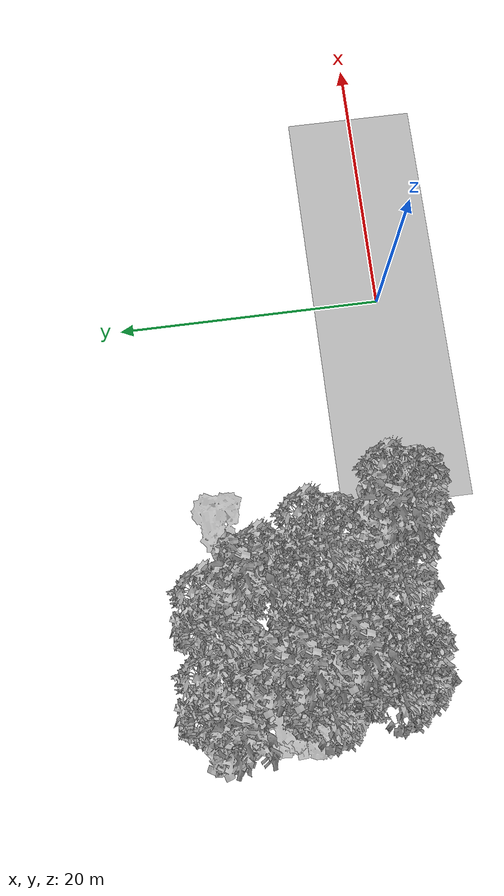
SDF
<sdf version="1.7">
 <world name="default">
  <model name="ground_plane">
   <static>1</static>
   <link name="link">
    <collision name="collision">
     <pose>-50 0 0 0 -0 0</pose>
     <geometry><plane><normal>0 0 1</normal><size>100 100</size></plane></geometry>
     <surface><contact><ode><min_depth>0.01</min_depth><max_vel>0</max_vel></ode></contact></surface>
    </collision>
    <visual name="grass">
     <cast_shadows>0</cast_shadows>
     <geometry>
      <mesh>
       <scale>0.5814285714285714 0.18142857142857144 0.1</scale>
       <uri>file://grass_plane/meshes/grass_plane.dae</uri>
      </mesh>
     </geometry>
    </visual>
   </link>
  </model>
  <model name="Tree 18">
   <static>1</static>
   <pose>-30.111929667590598 10.298646541853945 0 1.57079 -0 0</pose>
   <link name="link">
    <collision name="collision">
     <geometry><mesh><scale>3 2 3</scale><uri>model://tree_3/meshes/tree_3.obj</uri></mesh></geometry>
    </collision>
    <visual name="visual">
     <geometry><mesh><scale>3 2 3</scale><uri>model://tree_3/meshes/tree_3.obj</uri></mesh></geometry>
    </visual>
   </link>
  </model>
  <model name="Tree 45">
   <static>1</static>
   <pose>-17.58954131761009 3.535552865321147 0 1.57079 -0 0</pose>
   <link name="link">
    <collision name="collision">
     <geometry><mesh><scale>3.5 5 3.5</scale><uri>model://tree_9/meshes/tree_9.obj</uri></mesh></geometry>
    </collision>
    <visual name="visual">
     <geometry><mesh><scale>3.5 5 3.5</scale><uri>model://tree_9/meshes/tree_9.obj</uri></mesh></geometry>
    </visual>
   </link>
  </model>
  <model name="Tree 47">
   <static>1</static>
   <pose>-26.433230584407806 11.398256091670373 0 1.57079 -0 0</pose>
   <link name="link">
    <collision name="collision">
     <geometry><mesh><scale>3.5 5 3.5</scale><uri>model://tree_9/meshes/tree_9.obj</uri></mesh></geometry>
    </collision>
    <visual name="visual">
     <geometry><mesh><scale>3.5 5 3.5</scale><uri>model://tree_9/meshes/tree_9.obj</uri></mesh></geometry>
    </visual>
   </link>
  </model>
  <model name="Tree 59">
   <static>1</static>
   <pose>-26.517983421635055 2.756951550227882 0 1.57079 -0 0</pose>
   <link name="link">
    <collision name="collision">
     <geometry><mesh><scale>3.5 5 3.5</scale><uri>model://tree_2/meshes/tree_2.obj</uri></mesh></geometry>
    </collision>
    <visual name="visual">
     <geometry><mesh><scale>3.5 5 3.5</scale><uri>model://tree_2/meshes/tree_2.obj</uri></mesh></geometry>
    </visual>
   </link>
  </model>
  <model name="Tree 65">
   <static>1</static>
   <pose>-29.569099491698502 14.035850226527426 0 1.57079 -0 0</pose>
   <link name="link">
    <collision name="collision">
     <geometry><mesh><scale>3.5 5 3.5</scale><uri>model://tree_9/meshes/tree_9.obj</uri></mesh></geometry>
    </collision>
    <visual name="visual">
     <geometry><mesh><scale>3.5 5 3.5</scale><uri>model://tree_9/meshes/tree_9.obj</uri></mesh></geometry>
    </visual>
   </link>
  </model>
  <model name="Tree 66">
   <static>1</static>
   <pose>-24.936312415298275 9.479751244326476 0 1.57079 -0 0</pose>
   <link name="link">
    <collision name="collision">
     <geometry><mesh><scale>3 2 3</scale><uri>model://tree_3/meshes/tree_3.obj</uri></mesh></geometry>
    </collision>
    <visual name="visual">
     <geometry><mesh><scale>3 2 3</scale><uri>model://tree_3/meshes/tree_3.obj</uri></mesh></geometry>
    </visual>
   </link>
  </model>
  <model name="Tree 79">
   <static>1</static>
   <pose>-15.513808391097179 13.872051602895517 0 1.57079 -0 0</pose>
   <link name="link">
    <collision name="collision">
     <geometry><mesh><scale>3 2 3</scale><uri>model://tree_3/meshes/tree_3.obj</uri></mesh></geometry>
    </collision>
    <visual name="visual">
     <geometry><mesh><scale>3 2 3</scale><uri>model://tree_3/meshes/tree_3.obj</uri></mesh></geometry>
    </visual>
   </link>
  </model>
  <model name="Tree 96">
   <static>1</static>
   <pose>-25.300489403460038 5.2217594686056685 0 1.57079 -0 0</pose>
   <link name="link">
    <collision name="collision">
     <geometry><mesh><scale>3.5 5 3.5</scale><uri>model://tree_2/meshes/tree_2.obj</uri></mesh></geometry>
    </collision>
    <visual name="visual">
     <geometry><mesh><scale>3.5 5 3.5</scale><uri>model://tree_2/meshes/tree_2.obj</uri></mesh></geometry>
    </visual>
   </link>
  </model>
  <model name="Tree 105">
   <static>1</static>
   <pose>-20.36405833393593 13.019673782064253 0 1.57079 -0 0</pose>
   <link name="link">
    <collision name="collision">
     <geometry><mesh><scale>3.5 5 3.5</scale><uri>model://tree_9/meshes/tree_9.obj</uri></mesh></geometry>
    </collision>
    <visual name="visual">
     <geometry><mesh><scale>3.5 5 3.5</scale><uri>model://tree_9/meshes/tree_9.obj</uri></mesh></geometry>
    </visual>
   </link>
  </model>
  <model name="Tree 109">
   <static>1</static>
   <pose>-20.14058038980873 10.734048532202578 0 1.57079 -0 0</pose>
   <link name="link">
    <collision name="collision">
     <geometry><mesh><scale>3.5 5 3.5</scale><uri>model://tree_2/meshes/tree_2.obj</uri></mesh></geometry>
    </collision>
    <visual name="visual">
     <geometry><mesh><scale>3.5 5 3.5</scale><uri>model://tree_2/meshes/tree_2.obj</uri></mesh></geometry>
    </visual>
   </link>
  </model>
  <model name="Tree 125">
   <static>1</static>
   <pose>-19.33445344325752 11.188742687928851 0 1.57079 -0 0</pose>
   <link name="link">
    <collision name="collision">
     <geometry><mesh><scale>3 2 3</scale><uri>model://tree_3/meshes/tree_3.obj</uri></mesh></geometry>
    </collision>
    <visual name="visual">
     <geometry><mesh><scale>3 2 3</scale><uri>model://tree_3/meshes/tree_3.obj</uri></mesh></geometry>
    </visual>
   </link>
  </model>
  <model name="Tree 136">
   <static>1</static>
   <pose>-22.388114156257945 14.649075877006652 0 1.57079 -0 0</pose>
   <link name="link">
    <collision name="collision">
     <geometry><mesh><scale>3.5 5 3.5</scale><uri>model://tree_2/meshes/tree_2.obj</uri></mesh></geometry>
    </collision>
    <visual name="visual">
     <geometry><mesh><scale>3.5 5 3.5</scale><uri>model://tree_2/meshes/tree_2.obj</uri></mesh></geometry>
    </visual>
   </link>
  </model>
  <model name="Tree 144">
   <static>1</static>
   <pose>-18.16381189765353 7.275156035675902 0 1.57079 -0 0</pose>
   <link name="link">
    <collision name="collision">
     <geometry><mesh><scale>3.5 5 3.5</scale><uri>model://tree_2/meshes/tree_2.obj</uri></mesh></geometry>
    </collision>
    <visual name="visual">
     <geometry><mesh><scale>3.5 5 3.5</scale><uri>model://tree_2/meshes/tree_2.obj</uri></mesh></geometry>
    </visual>
   </link>
  </model>
  <model name="Tree 156">
   <static>1</static>
   <pose>-20.612496759961186 2.900106244919062 0 1.57079 -0 0</pose>
   <link name="link">
    <collision name="collision">
     <geometry><mesh><scale>3.5 5 3.5</scale><uri>model://tree_2/meshes/tree_2.obj</uri></mesh></geometry>
    </collision>
    <visual name="visual">
     <geometry><mesh><scale>3.5 5 3.5</scale><uri>model://tree_2/meshes/tree_2.obj</uri></mesh></geometry>
    </visual>
   </link>
  </model>
  <model name="Tree 163">
   <static>1</static>
   <pose>-31.053246090860817 9.14121072037133 0 1.57079 -0 0</pose>
   <link name="link">
    <collision name="collision">
     <geometry><mesh><scale>4 2.5 4</scale><uri>model://tree_1/meshes/tree_1.obj</uri></mesh></geometry>
    </collision>
    <visual name="visual">
     <geometry><mesh><scale>4 2.5 4</scale><uri>model://tree_1/meshes/tree_1.obj</uri></mesh></geometry>
    </visual>
   </link>
  </model>
  <model name="Tree 179">
   <static>1</static>
   <pose>-20.802112200071097 2.7700875756495833 0 1.57079 -0 0</pose>
   <link name="link">
    <collision name="collision">
     <geometry><mesh><scale>3 2 3</scale><uri>model://tree_3/meshes/tree_3.obj</uri></mesh></geometry>
    </collision>
    <visual name="visual">
     <geometry><mesh><scale>3 2 3</scale><uri>model://tree_3/meshes/tree_3.obj</uri></mesh></geometry>
    </visual>
   </link>
  </model>
  <model name="Tree 188">
   <static>1</static>
   <pose>-27.93700117385421 8.414360485496886 0 1.57079 -0 0</pose>
   <link name="link">
    <collision name="collision">
     <geometry><mesh><scale>3.5 5 3.5</scale><uri>model://tree_2/meshes/tree_2.obj</uri></mesh></geometry>
    </collision>
    <visual name="visual">
     <geometry><mesh><scale>3.5 5 3.5</scale><uri>model://tree_2/meshes/tree_2.obj</uri></mesh></geometry>
    </visual>
   </link>
  </model>
  <model name="Tree 221">
   <static>1</static>
   <pose>-27.720371770053585 14.889885282080346 0 1.57079 -0 0</pose>
   <link name="link">
    <collision name="collision">
     <geometry><mesh><scale>3.5 5 3.5</scale><uri>model://tree_2/meshes/tree_2.obj</uri></mesh></geometry>
    </collision>
    <visual name="visual">
     <geometry><mesh><scale>3.5 5 3.5</scale><uri>model://tree_2/meshes/tree_2.obj</uri></mesh></geometry>
    </visual>
   </link>
  </model>
  <model name="Tree 245">
   <static>1</static>
   <pose>-27.38697243514702 3.99806677075933 0 1.57079 -0 0</pose>
   <link name="link">
    <collision name="collision">
     <geometry><mesh><scale>3.5 5 3.5</scale><uri>model://tree_2/meshes/tree_2.obj</uri></mesh></geometry>
    </collision>
    <visual name="visual">
     <geometry><mesh><scale>3.5 5 3.5</scale><uri>model://tree_2/meshes/tree_2.obj</uri></mesh></geometry>
    </visual>
   </link>
  </model>
  <model name="Tree 246">
   <static>1</static>
   <pose>-25.717720429612754 6.282036644705531 0 1.57079 -0 0</pose>
   <link name="link">
    <collision name="collision">
     <geometry><mesh><scale>3.5 5 3.5</scale><uri>model://tree_9/meshes/tree_9.obj</uri></mesh></geometry>
    </collision>
    <visual name="visual">
     <geometry><mesh><scale>3.5 5 3.5</scale><uri>model://tree_9/meshes/tree_9.obj</uri></mesh></geometry>
    </visual>
   </link>
  </model>
  <model name="Tree 247">
   <static>1</static>
   <pose>-26.37612036665093 9.555469775447083 0 1.57079 -0 0</pose>
   <link name="link">
    <collision name="collision">
     <geometry><mesh><scale>3.5 5 3.5</scale><uri>model://tree_9/meshes/tree_9.obj</uri></mesh></geometry>
    </collision>
    <visual name="visual">
     <geometry><mesh><scale>3.5 5 3.5</scale><uri>model://tree_9/meshes/tree_9.obj</uri></mesh></geometry>
    </visual>
   </link>
  </model>
  <model name="Tree 248">
   <static>1</static>
   <pose>-15.724315317818757 1.382475547084283 0 1.57079 -0 0</pose>
   <link name="link">
    <collision name="collision">
     <geometry><mesh><scale>3.5 5 3.5</scale><uri>model://tree_2/meshes/tree_2.obj</uri></mesh></geometry>
    </collision>
    <visual name="visual">
     <geometry><mesh><scale>3.5 5 3.5</scale><uri>model://tree_2/meshes/tree_2.obj</uri></mesh></geometry>
    </visual>
   </link>
  </model>
  <model name="Tree 267">
   <static>1</static>
   <pose>-20.98486800585116 7.855043824439861 0 1.57079 -0 0</pose>
   <link name="link">
    <collision name="collision">
     <geometry><mesh><scale>4 2.5 4</scale><uri>model://tree_1/meshes/tree_1.obj</uri></mesh></geometry>
    </collision>
    <visual name="visual">
     <geometry><mesh><scale>4 2.5 4</scale><uri>model://tree_1/meshes/tree_1.obj</uri></mesh></geometry>
    </visual>
   </link>
  </model>
  <model name="Tree 288">
   <static>1</static>
   <pose>-22.755612669346547 8.442458356509263 0 1.57079 -0 0</pose>
   <link name="link">
    <collision name="collision">
     <geometry><mesh><scale>3.5 5 3.5</scale><uri>model://tree_2/meshes/tree_2.obj</uri></mesh></geometry>
    </collision>
    <visual name="visual">
     <geometry><mesh><scale>3.5 5 3.5</scale><uri>model://tree_2/meshes/tree_2.obj</uri></mesh></geometry>
    </visual>
   </link>
  </model>
  <model name="Tree 298">
   <static>1</static>
   <pose>-21.632968404005336 14.488051885137068 0 1.57079 -0 0</pose>
   <link name="link">
    <collision name="collision">
     <geometry><mesh><scale>4 2.5 4</scale><uri>model://tree_1/meshes/tree_1.obj</uri></mesh></geometry>
    </collision>
    <visual name="visual">
     <geometry><mesh><scale>4 2.5 4</scale><uri>model://tree_1/meshes/tree_1.obj</uri></mesh></geometry>
    </visual>
   </link>
  </model>
 </world>
</sdf>
